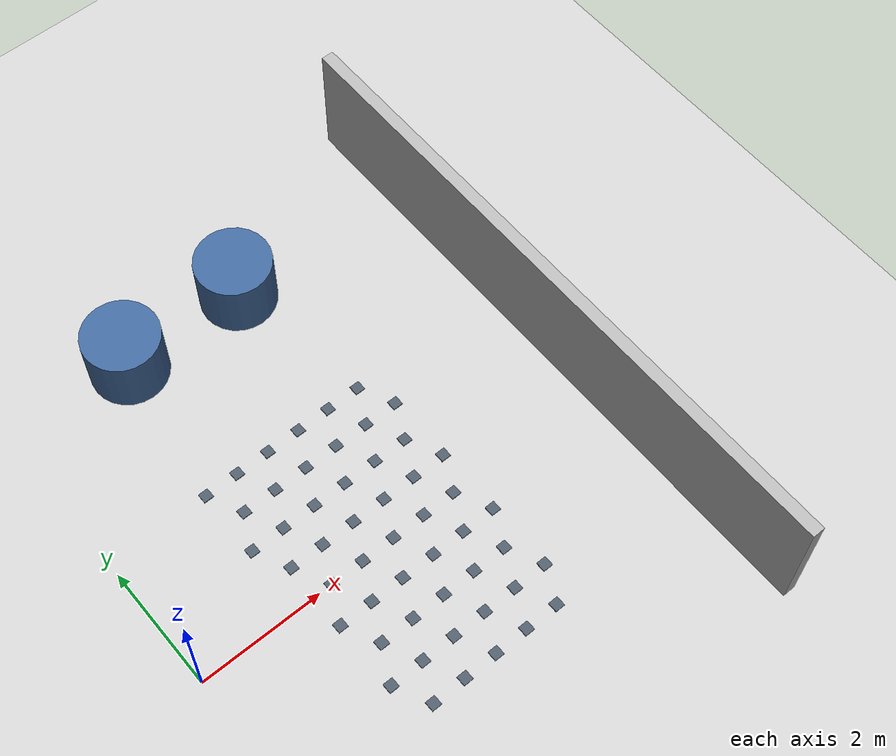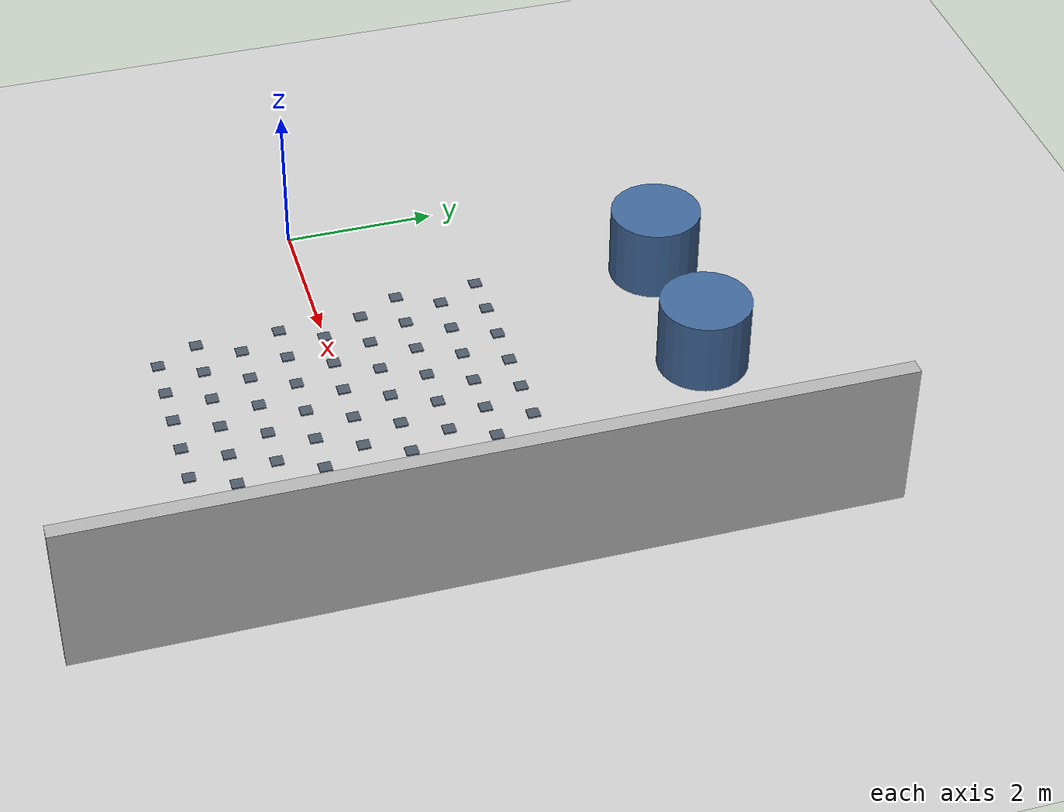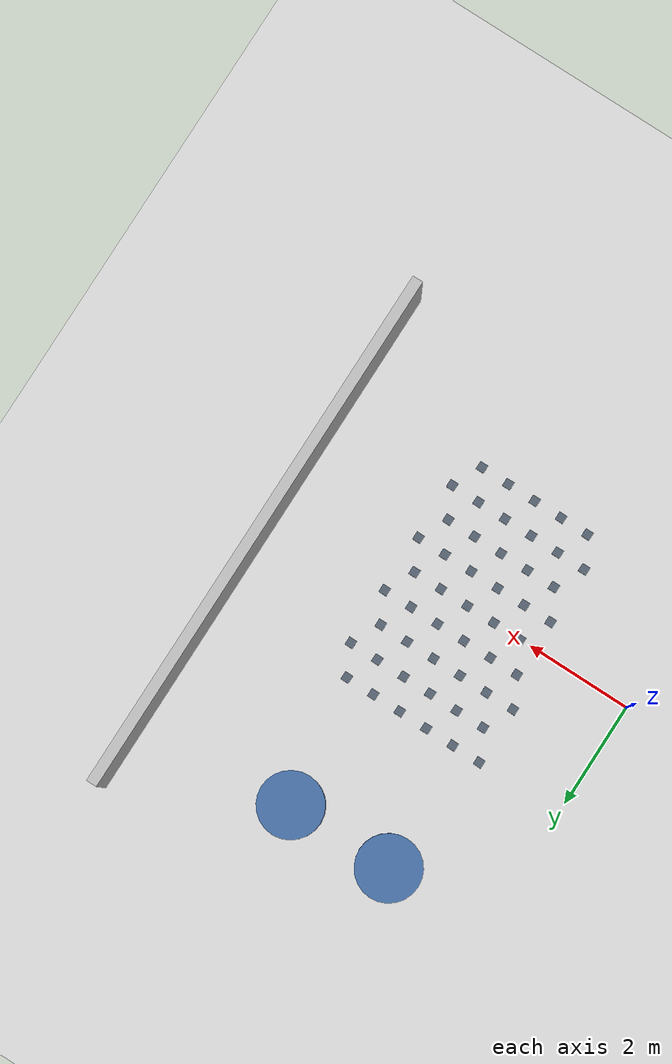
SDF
<sdf version="1.9">
 <world name="empty_ground">
  <model name="ground_plane">
   <static>true</static>
   <link name="link">
    <collision name="collision">
     <geometry><plane><normal>0 0 1</normal><size>100 100</size></plane></geometry>
     <surface>
      <friction>
       <ode><mu>1.5</mu><mu2>1.5</mu2></ode>
       <torsional><coefficient>0.0</coefficient></torsional>
      </friction>
     </surface>
    </collision>
    <visual name="visual">
     <geometry><plane><normal>0 0 1</normal><size>100 100</size></plane></geometry>
     <material><ambient>0.8 0.8 0.8 1</ambient><diffuse>0.8 0.8 0.8 1</diffuse></material>
    </visual>
   </link>
  </model>
  <model name="bump_49">
   <static>true</static>
   <pose>1.920 -1.650 0.012 0 0 0</pose>
   <link name="link">
    <collision name="collision">
     <geometry><box><size>0.16 0.16 0.024</size></box></geometry>
     <surface>
      <friction>
       <ode><mu>1.5</mu><mu2>1.5</mu2></ode>
       <torsional><coefficient>0.0</coefficient></torsional>
      </friction>
     </surface>
    </collision>
    <visual name="visual">
     <geometry><box><size>0.16 0.16 0.024</size></box></geometry>
     <material><ambient>0.25 0.3 0.35 1</ambient><diffuse>0.30 0.35 0.4 1</diffuse></material>
    </visual>
   </link>
  </model>
  <model name="bump_51">
   <static>true</static>
   <pose>1.920 -0.550 0.012 0 0 0</pose>
   <link name="link">
    <collision name="collision">
     <geometry><box><size>0.16 0.16 0.024</size></box></geometry>
     <surface>
      <friction>
       <ode><mu>1.5</mu><mu2>1.5</mu2></ode>
       <torsional><coefficient>0.0</coefficient></torsional>
      </friction>
     </surface>
    </collision>
    <visual name="visual">
     <geometry><box><size>0.16 0.16 0.024</size></box></geometry>
     <material><ambient>0.25 0.3 0.35 1</ambient><diffuse>0.30 0.35 0.4 1</diffuse></material>
    </visual>
   </link>
  </model>
  <model name="bump_53">
   <static>true</static>
   <pose>1.920 0.550 0.012 0 0 0</pose>
   <link name="link">
    <collision name="collision">
     <geometry><box><size>0.16 0.16 0.024</size></box></geometry>
     <surface>
      <friction>
       <ode><mu>1.5</mu><mu2>1.5</mu2></ode>
       <torsional><coefficient>0.0</coefficient></torsional>
      </friction>
     </surface>
    </collision>
    <visual name="visual">
     <geometry><box><size>0.16 0.16 0.024</size></box></geometry>
     <material><ambient>0.25 0.3 0.35 1</ambient><diffuse>0.30 0.35 0.4 1</diffuse></material>
    </visual>
   </link>
  </model>
  <model name="bump_54">
   <static>true</static>
   <pose>1.650 1.100 0.012 0 0 0</pose>
   <link name="link">
    <collision name="collision">
     <geometry><box><size>0.16 0.16 0.024</size></box></geometry>
     <surface>
      <friction>
       <ode><mu>1.5</mu><mu2>1.5</mu2></ode>
       <torsional><coefficient>0.0</coefficient></torsional>
      </friction>
     </surface>
    </collision>
    <visual name="visual">
     <geometry><box><size>0.16 0.16 0.024</size></box></geometry>
     <material><ambient>0.25 0.3 0.35 1</ambient><diffuse>0.30 0.35 0.4 1</diffuse></material>
    </visual>
   </link>
  </model>
  <model name="bump_55">
   <static>true</static>
   <pose>1.920 1.650 0.012 0 0 0</pose>
   <link name="link">
    <collision name="collision">
     <geometry><box><size>0.16 0.16 0.024</size></box></geometry>
     <surface>
      <friction>
       <ode><mu>1.5</mu><mu2>1.5</mu2></ode>
       <torsional><coefficient>0.0</coefficient></torsional>
      </friction>
     </surface>
    </collision>
    <visual name="visual">
     <geometry><box><size>0.16 0.16 0.024</size></box></geometry>
     <material><ambient>0.25 0.3 0.35 1</ambient><diffuse>0.30 0.35 0.4 1</diffuse></material>
    </visual>
   </link>
  </model>
  <model name="bump_56">
   <static>true</static>
   <pose>1.650 2.200 0.012 0 0 0</pose>
   <link name="link">
    <collision name="collision">
     <geometry><box><size>0.16 0.16 0.024</size></box></geometry>
     <surface>
      <friction>
       <ode><mu>1.5</mu><mu2>1.5</mu2></ode>
       <torsional><coefficient>0.0</coefficient></torsional>
      </friction>
     </surface>
    </collision>
    <visual name="visual">
     <geometry><box><size>0.16 0.16 0.024</size></box></geometry>
     <material><ambient>0.25 0.3 0.35 1</ambient><diffuse>0.30 0.35 0.4 1</diffuse></material>
    </visual>
   </link>
  </model>
  <model name="bump_57">
   <static>true</static>
   <pose>2.200 -2.200 0.012 0 0 0</pose>
   <link name="link">
    <collision name="collision">
     <geometry><box><size>0.16 0.16 0.024</size></box></geometry>
     <surface>
      <friction>
       <ode><mu>1.5</mu><mu2>1.5</mu2></ode>
       <torsional><coefficient>0.0</coefficient></torsional>
      </friction>
     </surface>
    </collision>
    <visual name="visual">
     <geometry><box><size>0.16 0.16 0.024</size></box></geometry>
     <material><ambient>0.25 0.3 0.35 1</ambient><diffuse>0.30 0.35 0.4 1</diffuse></material>
    </visual>
   </link>
  </model>
  <model name="bump_58">
   <static>true</static>
   <pose>2.470 -1.650 0.012 0 0 0</pose>
   <link name="link">
    <collision name="collision">
     <geometry><box><size>0.16 0.16 0.024</size></box></geometry>
     <surface>
      <friction>
       <ode><mu>1.5</mu><mu2>1.5</mu2></ode>
       <torsional><coefficient>0.0</coefficient></torsional>
      </friction>
     </surface>
    </collision>
    <visual name="visual">
     <geometry><box><size>0.16 0.16 0.024</size></box></geometry>
     <material><ambient>0.25 0.3 0.35 1</ambient><diffuse>0.30 0.35 0.4 1</diffuse></material>
    </visual>
   </link>
  </model>
  <model name="bump_59">
   <static>true</static>
   <pose>2.200 -1.100 0.012 0 0 0</pose>
   <link name="link">
    <collision name="collision">
     <geometry><box><size>0.16 0.16 0.024</size></box></geometry>
     <surface>
      <friction>
       <ode><mu>1.5</mu><mu2>1.5</mu2></ode>
       <torsional><coefficient>0.0</coefficient></torsional>
      </friction>
     </surface>
    </collision>
    <visual name="visual">
     <geometry><box><size>0.16 0.16 0.024</size></box></geometry>
     <material><ambient>0.25 0.3 0.35 1</ambient><diffuse>0.30 0.35 0.4 1</diffuse></material>
    </visual>
   </link>
  </model>
  <model name="bump_60">
   <static>true</static>
   <pose>2.470 -0.550 0.012 0 0 0</pose>
   <link name="link">
    <collision name="collision">
     <geometry><box><size>0.16 0.16 0.024</size></box></geometry>
     <surface>
      <friction>
       <ode><mu>1.5</mu><mu2>1.5</mu2></ode>
       <torsional><coefficient>0.0</coefficient></torsional>
      </friction>
     </surface>
    </collision>
    <visual name="visual">
     <geometry><box><size>0.16 0.16 0.024</size></box></geometry>
     <material><ambient>0.25 0.3 0.35 1</ambient><diffuse>0.30 0.35 0.4 1</diffuse></material>
    </visual>
   </link>
  </model>
  <model name="bump_61">
   <static>true</static>
   <pose>2.200 0.000 0.012 0 0 0</pose>
   <link name="link">
    <collision name="collision">
     <geometry><box><size>0.16 0.16 0.024</size></box></geometry>
     <surface>
      <friction>
       <ode><mu>1.5</mu><mu2>1.5</mu2></ode>
       <torsional><coefficient>0.0</coefficient></torsional>
      </friction>
     </surface>
    </collision>
    <visual name="visual">
     <geometry><box><size>0.16 0.16 0.024</size></box></geometry>
     <material><ambient>0.25 0.3 0.35 1</ambient><diffuse>0.30 0.35 0.4 1</diffuse></material>
    </visual>
   </link>
  </model>
  <model name="bump_62">
   <static>true</static>
   <pose>2.470 0.550 0.012 0 0 0</pose>
   <link name="link">
    <collision name="collision">
     <geometry><box><size>0.16 0.16 0.024</size></box></geometry>
     <surface>
      <friction>
       <ode><mu>1.5</mu><mu2>1.5</mu2></ode>
       <torsional><coefficient>0.0</coefficient></torsional>
      </friction>
     </surface>
    </collision>
    <visual name="visual">
     <geometry><box><size>0.16 0.16 0.024</size></box></geometry>
     <material><ambient>0.25 0.3 0.35 1</ambient><diffuse>0.30 0.35 0.4 1</diffuse></material>
    </visual>
   </link>
  </model>
  <model name="bump_63">
   <static>true</static>
   <pose>2.200 1.100 0.012 0 0 0</pose>
   <link name="link">
    <collision name="collision">
     <geometry><box><size>0.16 0.16 0.024</size></box></geometry>
     <surface>
      <friction>
       <ode><mu>1.5</mu><mu2>1.5</mu2></ode>
       <torsional><coefficient>0.0</coefficient></torsional>
      </friction>
     </surface>
    </collision>
    <visual name="visual">
     <geometry><box><size>0.16 0.16 0.024</size></box></geometry>
     <material><ambient>0.25 0.3 0.35 1</ambient><diffuse>0.30 0.35 0.4 1</diffuse></material>
    </visual>
   </link>
  </model>
  <model name="bump_64">
   <static>true</static>
   <pose>2.470 1.650 0.012 0 0 0</pose>
   <link name="link">
    <collision name="collision">
     <geometry><box><size>0.16 0.16 0.024</size></box></geometry>
     <surface>
      <friction>
       <ode><mu>1.5</mu><mu2>1.5</mu2></ode>
       <torsional><coefficient>0.0</coefficient></torsional>
      </friction>
     </surface>
    </collision>
    <visual name="visual">
     <geometry><box><size>0.16 0.16 0.024</size></box></geometry>
     <material><ambient>0.25 0.3 0.35 1</ambient><diffuse>0.30 0.35 0.4 1</diffuse></material>
    </visual>
   </link>
  </model>
  <model name="bump_65">
   <static>true</static>
   <pose>2.200 2.200 0.012 0 0 0</pose>
   <link name="link">
    <collision name="collision">
     <geometry><box><size>0.16 0.16 0.024</size></box></geometry>
     <surface>
      <friction>
       <ode><mu>1.5</mu><mu2>1.5</mu2></ode>
       <torsional><coefficient>0.0</coefficient></torsional>
      </friction>
     </surface>
    </collision>
    <visual name="visual">
     <geometry><box><size>0.16 0.16 0.024</size></box></geometry>
     <material><ambient>0.25 0.3 0.35 1</ambient><diffuse>0.30 0.35 0.4 1</diffuse></material>
    </visual>
   </link>
  </model>
  <model name="bump_66">
   <static>true</static>
   <pose>2.750 -2.200 0.012 0 0 0</pose>
   <link name="link">
    <collision name="collision">
     <geometry><box><size>0.16 0.16 0.024</size></box></geometry>
     <surface>
      <friction>
       <ode><mu>1.5</mu><mu2>1.5</mu2></ode>
       <torsional><coefficient>0.0</coefficient></torsional>
      </friction>
     </surface>
    </collision>
    <visual name="visual">
     <geometry><box><size>0.16 0.16 0.024</size></box></geometry>
     <material><ambient>0.25 0.3 0.35 1</ambient><diffuse>0.30 0.35 0.4 1</diffuse></material>
    </visual>
   </link>
  </model>
  <model name="bump_67">
   <static>true</static>
   <pose>3.020 -1.650 0.012 0 0 0</pose>
   <link name="link">
    <collision name="collision">
     <geometry><box><size>0.16 0.16 0.024</size></box></geometry>
     <surface>
      <friction>
       <ode><mu>1.5</mu><mu2>1.5</mu2></ode>
       <torsional><coefficient>0.0</coefficient></torsional>
      </friction>
     </surface>
    </collision>
    <visual name="visual">
     <geometry><box><size>0.16 0.16 0.024</size></box></geometry>
     <material><ambient>0.25 0.3 0.35 1</ambient><diffuse>0.30 0.35 0.4 1</diffuse></material>
    </visual>
   </link>
  </model>
  <model name="bump_68">
   <static>true</static>
   <pose>2.750 -1.100 0.012 0 0 0</pose>
   <link name="link">
    <collision name="collision">
     <geometry><box><size>0.16 0.16 0.024</size></box></geometry>
     <surface>
      <friction>
       <ode><mu>1.5</mu><mu2>1.5</mu2></ode>
       <torsional><coefficient>0.0</coefficient></torsional>
      </friction>
     </surface>
    </collision>
    <visual name="visual">
     <geometry><box><size>0.16 0.16 0.024</size></box></geometry>
     <material><ambient>0.25 0.3 0.35 1</ambient><diffuse>0.30 0.35 0.4 1</diffuse></material>
    </visual>
   </link>
  </model>
  <model name="bump_69">
   <static>true</static>
   <pose>3.020 -0.550 0.012 0 0 0</pose>
   <link name="link">
    <collision name="collision">
     <geometry><box><size>0.16 0.16 0.024</size></box></geometry>
     <surface>
      <friction>
       <ode><mu>1.5</mu><mu2>1.5</mu2></ode>
       <torsional><coefficient>0.0</coefficient></torsional>
      </friction>
     </surface>
    </collision>
    <visual name="visual">
     <geometry><box><size>0.16 0.16 0.024</size></box></geometry>
     <material><ambient>0.25 0.3 0.35 1</ambient><diffuse>0.30 0.35 0.4 1</diffuse></material>
    </visual>
   </link>
  </model>
  <model name="bump_70">
   <static>true</static>
   <pose>2.750 0.000 0.012 0 0 0</pose>
   <link name="link">
    <collision name="collision">
     <geometry><box><size>0.16 0.16 0.024</size></box></geometry>
     <surface>
      <friction>
       <ode><mu>1.5</mu><mu2>1.5</mu2></ode>
       <torsional><coefficient>0.0</coefficient></torsional>
      </friction>
     </surface>
    </collision>
    <visual name="visual">
     <geometry><box><size>0.16 0.16 0.024</size></box></geometry>
     <material><ambient>0.25 0.3 0.35 1</ambient><diffuse>0.30 0.35 0.4 1</diffuse></material>
    </visual>
   </link>
  </model>
  <model name="bump_71">
   <static>true</static>
   <pose>3.020 0.550 0.012 0 0 0</pose>
   <link name="link">
    <collision name="collision">
     <geometry><box><size>0.16 0.16 0.024</size></box></geometry>
     <surface>
      <friction>
       <ode><mu>1.5</mu><mu2>1.5</mu2></ode>
       <torsional><coefficient>0.0</coefficient></torsional>
      </friction>
     </surface>
    </collision>
    <visual name="visual">
     <geometry><box><size>0.16 0.16 0.024</size></box></geometry>
     <material><ambient>0.25 0.3 0.35 1</ambient><diffuse>0.30 0.35 0.4 1</diffuse></material>
    </visual>
   </link>
  </model>
  <model name="bump_72">
   <static>true</static>
   <pose>2.750 1.100 0.012 0 0 0</pose>
   <link name="link">
    <collision name="collision">
     <geometry><box><size>0.16 0.16 0.024</size></box></geometry>
     <surface>
      <friction>
       <ode><mu>1.5</mu><mu2>1.5</mu2></ode>
       <torsional><coefficient>0.0</coefficient></torsional>
      </friction>
     </surface>
    </collision>
    <visual name="visual">
     <geometry><box><size>0.16 0.16 0.024</size></box></geometry>
     <material><ambient>0.25 0.3 0.35 1</ambient><diffuse>0.30 0.35 0.4 1</diffuse></material>
    </visual>
   </link>
  </model>
  <model name="bump_73">
   <static>true</static>
   <pose>3.020 1.650 0.012 0 0 0</pose>
   <link name="link">
    <collision name="collision">
     <geometry><box><size>0.16 0.16 0.024</size></box></geometry>
     <surface>
      <friction>
       <ode><mu>1.5</mu><mu2>1.5</mu2></ode>
       <torsional><coefficient>0.0</coefficient></torsional>
      </friction>
     </surface>
    </collision>
    <visual name="visual">
     <geometry><box><size>0.16 0.16 0.024</size></box></geometry>
     <material><ambient>0.25 0.3 0.35 1</ambient><diffuse>0.30 0.35 0.4 1</diffuse></material>
    </visual>
   </link>
  </model>
  <model name="bump_74">
   <static>true</static>
   <pose>2.750 2.200 0.012 0 0 0</pose>
   <link name="link">
    <collision name="collision">
     <geometry><box><size>0.16 0.16 0.024</size></box></geometry>
     <surface>
      <friction>
       <ode><mu>1.5</mu><mu2>1.5</mu2></ode>
       <torsional><coefficient>0.0</coefficient></torsional>
      </friction>
     </surface>
    </collision>
    <visual name="visual">
     <geometry><box><size>0.16 0.16 0.024</size></box></geometry>
     <material><ambient>0.25 0.3 0.35 1</ambient><diffuse>0.30 0.35 0.4 1</diffuse></material>
    </visual>
   </link>
  </model>
  <model name="bump_75">
   <static>true</static>
   <pose>3.300 -2.200 0.012 0 0 0</pose>
   <link name="link">
    <collision name="collision">
     <geometry><box><size>0.16 0.16 0.024</size></box></geometry>
     <surface>
      <friction>
       <ode><mu>1.5</mu><mu2>1.5</mu2></ode>
       <torsional><coefficient>0.0</coefficient></torsional>
      </friction>
     </surface>
    </collision>
    <visual name="visual">
     <geometry><box><size>0.16 0.16 0.024</size></box></geometry>
     <material><ambient>0.25 0.3 0.35 1</ambient><diffuse>0.30 0.35 0.4 1</diffuse></material>
    </visual>
   </link>
  </model>
  <model name="bump_76">
   <static>true</static>
   <pose>3.570 -1.650 0.012 0 0 0</pose>
   <link name="link">
    <collision name="collision">
     <geometry><box><size>0.16 0.16 0.024</size></box></geometry>
     <surface>
      <friction>
       <ode><mu>1.5</mu><mu2>1.5</mu2></ode>
       <torsional><coefficient>0.0</coefficient></torsional>
      </friction>
     </surface>
    </collision>
    <visual name="visual">
     <geometry><box><size>0.16 0.16 0.024</size></box></geometry>
     <material><ambient>0.25 0.3 0.35 1</ambient><diffuse>0.30 0.35 0.4 1</diffuse></material>
    </visual>
   </link>
  </model>
  <model name="bump_77">
   <static>true</static>
   <pose>3.300 -1.100 0.012 0 0 0</pose>
   <link name="link">
    <collision name="collision">
     <geometry><box><size>0.16 0.16 0.024</size></box></geometry>
     <surface>
      <friction>
       <ode><mu>1.5</mu><mu2>1.5</mu2></ode>
       <torsional><coefficient>0.0</coefficient></torsional>
      </friction>
     </surface>
    </collision>
    <visual name="visual">
     <geometry><box><size>0.16 0.16 0.024</size></box></geometry>
     <material><ambient>0.25 0.3 0.35 1</ambient><diffuse>0.30 0.35 0.4 1</diffuse></material>
    </visual>
   </link>
  </model>
  <model name="bump_78">
   <static>true</static>
   <pose>3.570 -0.550 0.012 0 0 0</pose>
   <link name="link">
    <collision name="collision">
     <geometry><box><size>0.16 0.16 0.024</size></box></geometry>
     <surface>
      <friction>
       <ode><mu>1.5</mu><mu2>1.5</mu2></ode>
       <torsional><coefficient>0.0</coefficient></torsional>
      </friction>
     </surface>
    </collision>
    <visual name="visual">
     <geometry><box><size>0.16 0.16 0.024</size></box></geometry>
     <material><ambient>0.25 0.3 0.35 1</ambient><diffuse>0.30 0.35 0.4 1</diffuse></material>
    </visual>
   </link>
  </model>
  <model name="bump_79">
   <static>true</static>
   <pose>3.300 0.000 0.012 0 0 0</pose>
   <link name="link">
    <collision name="collision">
     <geometry><box><size>0.16 0.16 0.024</size></box></geometry>
     <surface>
      <friction>
       <ode><mu>1.5</mu><mu2>1.5</mu2></ode>
       <torsional><coefficient>0.0</coefficient></torsional>
      </friction>
     </surface>
    </collision>
    <visual name="visual">
     <geometry><box><size>0.16 0.16 0.024</size></box></geometry>
     <material><ambient>0.25 0.3 0.35 1</ambient><diffuse>0.30 0.35 0.4 1</diffuse></material>
    </visual>
   </link>
  </model>
  <model name="bump_80">
   <static>true</static>
   <pose>3.570 0.550 0.012 0 0 0</pose>
   <link name="link">
    <collision name="collision">
     <geometry><box><size>0.16 0.16 0.024</size></box></geometry>
     <surface>
      <friction>
       <ode><mu>1.5</mu><mu2>1.5</mu2></ode>
       <torsional><coefficient>0.0</coefficient></torsional>
      </friction>
     </surface>
    </collision>
    <visual name="visual">
     <geometry><box><size>0.16 0.16 0.024</size></box></geometry>
     <material><ambient>0.25 0.3 0.35 1</ambient><diffuse>0.30 0.35 0.4 1</diffuse></material>
    </visual>
   </link>
  </model>
  <model name="bump_81">
   <static>true</static>
   <pose>3.300 1.100 0.012 0 0 0</pose>
   <link name="link">
    <collision name="collision">
     <geometry><box><size>0.16 0.16 0.024</size></box></geometry>
     <surface>
      <friction>
       <ode><mu>1.5</mu><mu2>1.5</mu2></ode>
       <torsional><coefficient>0.0</coefficient></torsional>
      </friction>
     </surface>
    </collision>
    <visual name="visual">
     <geometry><box><size>0.16 0.16 0.024</size></box></geometry>
     <material><ambient>0.25 0.3 0.35 1</ambient><diffuse>0.30 0.35 0.4 1</diffuse></material>
    </visual>
   </link>
  </model>
  <model name="bump_82">
   <static>true</static>
   <pose>3.570 1.650 0.012 0 0 0</pose>
   <link name="link">
    <collision name="collision">
     <geometry><box><size>0.16 0.16 0.024</size></box></geometry>
     <surface>
      <friction>
       <ode><mu>1.5</mu><mu2>1.5</mu2></ode>
       <torsional><coefficient>0.0</coefficient></torsional>
      </friction>
     </surface>
    </collision>
    <visual name="visual">
     <geometry><box><size>0.16 0.16 0.024</size></box></geometry>
     <material><ambient>0.25 0.3 0.35 1</ambient><diffuse>0.30 0.35 0.4 1</diffuse></material>
    </visual>
   </link>
  </model>
  <model name="bump_83">
   <static>true</static>
   <pose>3.300 2.200 0.012 0 0 0</pose>
   <link name="link">
    <collision name="collision">
     <geometry><box><size>0.16 0.16 0.024</size></box></geometry>
     <surface>
      <friction>
       <ode><mu>1.5</mu><mu2>1.5</mu2></ode>
       <torsional><coefficient>0.0</coefficient></torsional>
      </friction>
     </surface>
    </collision>
    <visual name="visual">
     <geometry><box><size>0.16 0.16 0.024</size></box></geometry>
     <material><ambient>0.25 0.3 0.35 1</ambient><diffuse>0.30 0.35 0.4 1</diffuse></material>
    </visual>
   </link>
  </model>
  <model name="bump_84">
   <static>true</static>
   <pose>3.850 -2.200 0.012 0 0 0</pose>
   <link name="link">
    <collision name="collision">
     <geometry><box><size>0.16 0.16 0.024</size></box></geometry>
     <surface>
      <friction>
       <ode><mu>1.5</mu><mu2>1.5</mu2></ode>
       <torsional><coefficient>0.0</coefficient></torsional>
      </friction>
     </surface>
    </collision>
    <visual name="visual">
     <geometry><box><size>0.16 0.16 0.024</size></box></geometry>
     <material><ambient>0.25 0.3 0.35 1</ambient><diffuse>0.30 0.35 0.4 1</diffuse></material>
    </visual>
   </link>
  </model>
  <model name="bump_85">
   <static>true</static>
   <pose>4.120 -1.650 0.012 0 0 0</pose>
   <link name="link">
    <collision name="collision">
     <geometry><box><size>0.16 0.16 0.024</size></box></geometry>
     <surface>
      <friction>
       <ode><mu>1.5</mu><mu2>1.5</mu2></ode>
       <torsional><coefficient>0.0</coefficient></torsional>
      </friction>
     </surface>
    </collision>
    <visual name="visual">
     <geometry><box><size>0.16 0.16 0.024</size></box></geometry>
     <material><ambient>0.25 0.3 0.35 1</ambient><diffuse>0.30 0.35 0.4 1</diffuse></material>
    </visual>
   </link>
  </model>
  <model name="bump_86">
   <static>true</static>
   <pose>3.850 -1.100 0.012 0 0 0</pose>
   <link name="link">
    <collision name="collision">
     <geometry><box><size>0.16 0.16 0.024</size></box></geometry>
     <surface>
      <friction>
       <ode><mu>1.5</mu><mu2>1.5</mu2></ode>
       <torsional><coefficient>0.0</coefficient></torsional>
      </friction>
     </surface>
    </collision>
    <visual name="visual">
     <geometry><box><size>0.16 0.16 0.024</size></box></geometry>
     <material><ambient>0.25 0.3 0.35 1</ambient><diffuse>0.30 0.35 0.4 1</diffuse></material>
    </visual>
   </link>
  </model>
  <model name="bump_87">
   <static>true</static>
   <pose>4.120 -0.550 0.012 0 0 0</pose>
   <link name="link">
    <collision name="collision">
     <geometry><box><size>0.16 0.16 0.024</size></box></geometry>
     <surface>
      <friction>
       <ode><mu>1.5</mu><mu2>1.5</mu2></ode>
       <torsional><coefficient>0.0</coefficient></torsional>
      </friction>
     </surface>
    </collision>
    <visual name="visual">
     <geometry><box><size>0.16 0.16 0.024</size></box></geometry>
     <material><ambient>0.25 0.3 0.35 1</ambient><diffuse>0.30 0.35 0.4 1</diffuse></material>
    </visual>
   </link>
  </model>
  <model name="bump_88">
   <static>true</static>
   <pose>3.850 0.000 0.012 0 0 0</pose>
   <link name="link">
    <collision name="collision">
     <geometry><box><size>0.16 0.16 0.024</size></box></geometry>
     <surface>
      <friction>
       <ode><mu>1.5</mu><mu2>1.5</mu2></ode>
       <torsional><coefficient>0.0</coefficient></torsional>
      </friction>
     </surface>
    </collision>
    <visual name="visual">
     <geometry><box><size>0.16 0.16 0.024</size></box></geometry>
     <material><ambient>0.25 0.3 0.35 1</ambient><diffuse>0.30 0.35 0.4 1</diffuse></material>
    </visual>
   </link>
  </model>
  <model name="bump_89">
   <static>true</static>
   <pose>4.120 0.550 0.012 0 0 0</pose>
   <link name="link">
    <collision name="collision">
     <geometry><box><size>0.16 0.16 0.024</size></box></geometry>
     <surface>
      <friction>
       <ode><mu>1.5</mu><mu2>1.5</mu2></ode>
       <torsional><coefficient>0.0</coefficient></torsional>
      </friction>
     </surface>
    </collision>
    <visual name="visual">
     <geometry><box><size>0.16 0.16 0.024</size></box></geometry>
     <material><ambient>0.25 0.3 0.35 1</ambient><diffuse>0.30 0.35 0.4 1</diffuse></material>
    </visual>
   </link>
  </model>
  <model name="bump_90">
   <static>true</static>
   <pose>3.850 1.100 0.012 0 0 0</pose>
   <link name="link">
    <collision name="collision">
     <geometry><box><size>0.16 0.16 0.024</size></box></geometry>
     <surface>
      <friction>
       <ode><mu>1.5</mu><mu2>1.5</mu2></ode>
       <torsional><coefficient>0.0</coefficient></torsional>
      </friction>
     </surface>
    </collision>
    <visual name="visual">
     <geometry><box><size>0.16 0.16 0.024</size></box></geometry>
     <material><ambient>0.25 0.3 0.35 1</ambient><diffuse>0.30 0.35 0.4 1</diffuse></material>
    </visual>
   </link>
  </model>
  <model name="bump_91">
   <static>true</static>
   <pose>4.120 1.650 0.012 0 0 0</pose>
   <link name="link">
    <collision name="collision">
     <geometry><box><size>0.16 0.16 0.024</size></box></geometry>
     <surface>
      <friction>
       <ode><mu>1.5</mu><mu2>1.5</mu2></ode>
       <torsional><coefficient>0.0</coefficient></torsional>
      </friction>
     </surface>
    </collision>
    <visual name="visual">
     <geometry><box><size>0.16 0.16 0.024</size></box></geometry>
     <material><ambient>0.25 0.3 0.35 1</ambient><diffuse>0.30 0.35 0.4 1</diffuse></material>
    </visual>
   </link>
  </model>
  <model name="bump_92">
   <static>true</static>
   <pose>3.850 2.200 0.012 0 0 0</pose>
   <link name="link">
    <collision name="collision">
     <geometry><box><size>0.16 0.16 0.024</size></box></geometry>
     <surface>
      <friction>
       <ode><mu>1.5</mu><mu2>1.5</mu2></ode>
       <torsional><coefficient>0.0</coefficient></torsional>
      </friction>
     </surface>
    </collision>
    <visual name="visual">
     <geometry><box><size>0.16 0.16 0.024</size></box></geometry>
     <material><ambient>0.25 0.3 0.35 1</ambient><diffuse>0.30 0.35 0.4 1</diffuse></material>
    </visual>
   </link>
  </model>
  <model name="bump_93">
   <static>true</static>
   <pose>4.400 -2.200 0.012 0 0 0</pose>
   <link name="link">
    <collision name="collision">
     <geometry><box><size>0.16 0.16 0.024</size></box></geometry>
     <surface>
      <friction>
       <ode><mu>1.5</mu><mu2>1.5</mu2></ode>
       <torsional><coefficient>0.0</coefficient></torsional>
      </friction>
     </surface>
    </collision>
    <visual name="visual">
     <geometry><box><size>0.16 0.16 0.024</size></box></geometry>
     <material><ambient>0.25 0.3 0.35 1</ambient><diffuse>0.30 0.35 0.4 1</diffuse></material>
    </visual>
   </link>
  </model>
  <model name="bump_94">
   <static>true</static>
   <pose>4.670 -1.650 0.012 0 0 0</pose>
   <link name="link">
    <collision name="collision">
     <geometry><box><size>0.16 0.16 0.024</size></box></geometry>
     <surface>
      <friction>
       <ode><mu>1.5</mu><mu2>1.5</mu2></ode>
       <torsional><coefficient>0.0</coefficient></torsional>
      </friction>
     </surface>
    </collision>
    <visual name="visual">
     <geometry><box><size>0.16 0.16 0.024</size></box></geometry>
     <material><ambient>0.25 0.3 0.35 1</ambient><diffuse>0.30 0.35 0.4 1</diffuse></material>
    </visual>
   </link>
  </model>
  <model name="bump_95">
   <static>true</static>
   <pose>4.400 -1.100 0.012 0 0 0</pose>
   <link name="link">
    <collision name="collision">
     <geometry><box><size>0.16 0.16 0.024</size></box></geometry>
     <surface>
      <friction>
       <ode><mu>1.5</mu><mu2>1.5</mu2></ode>
       <torsional><coefficient>0.0</coefficient></torsional>
      </friction>
     </surface>
    </collision>
    <visual name="visual">
     <geometry><box><size>0.16 0.16 0.024</size></box></geometry>
     <material><ambient>0.25 0.3 0.35 1</ambient><diffuse>0.30 0.35 0.4 1</diffuse></material>
    </visual>
   </link>
  </model>
  <model name="bump_96">
   <static>true</static>
   <pose>4.670 -0.550 0.012 0 0 0</pose>
   <link name="link">
    <collision name="collision">
     <geometry><box><size>0.16 0.16 0.024</size></box></geometry>
     <surface>
      <friction>
       <ode><mu>1.5</mu><mu2>1.5</mu2></ode>
       <torsional><coefficient>0.0</coefficient></torsional>
      </friction>
     </surface>
    </collision>
    <visual name="visual">
     <geometry><box><size>0.16 0.16 0.024</size></box></geometry>
     <material><ambient>0.25 0.3 0.35 1</ambient><diffuse>0.30 0.35 0.4 1</diffuse></material>
    </visual>
   </link>
  </model>
  <model name="bump_97">
   <static>true</static>
   <pose>4.400 0.000 0.012 0 0 0</pose>
   <link name="link">
    <collision name="collision">
     <geometry><box><size>0.16 0.16 0.024</size></box></geometry>
     <surface>
      <friction>
       <ode><mu>1.5</mu><mu2>1.5</mu2></ode>
       <torsional><coefficient>0.0</coefficient></torsional>
      </friction>
     </surface>
    </collision>
    <visual name="visual">
     <geometry><box><size>0.16 0.16 0.024</size></box></geometry>
     <material><ambient>0.25 0.3 0.35 1</ambient><diffuse>0.30 0.35 0.4 1</diffuse></material>
    </visual>
   </link>
  </model>
  <model name="bump_98">
   <static>true</static>
   <pose>4.670 0.550 0.012 0 0 0</pose>
   <link name="link">
    <collision name="collision">
     <geometry><box><size>0.16 0.16 0.024</size></box></geometry>
     <surface>
      <friction>
       <ode><mu>1.5</mu><mu2>1.5</mu2></ode>
       <torsional><coefficient>0.0</coefficient></torsional>
      </friction>
     </surface>
    </collision>
    <visual name="visual">
     <geometry><box><size>0.16 0.16 0.024</size></box></geometry>
     <material><ambient>0.25 0.3 0.35 1</ambient><diffuse>0.30 0.35 0.4 1</diffuse></material>
    </visual>
   </link>
  </model>
  <model name="bump_99">
   <static>true</static>
   <pose>4.400 1.100 0.012 0 0 0</pose>
   <link name="link">
    <collision name="collision">
     <geometry><box><size>0.16 0.16 0.024</size></box></geometry>
     <surface>
      <friction>
       <ode><mu>1.5</mu><mu2>1.5</mu2></ode>
       <torsional><coefficient>0.0</coefficient></torsional>
      </friction>
     </surface>
    </collision>
    <visual name="visual">
     <geometry><box><size>0.16 0.16 0.024</size></box></geometry>
     <material><ambient>0.25 0.3 0.35 1</ambient><diffuse>0.30 0.35 0.4 1</diffuse></material>
    </visual>
   </link>
  </model>
  <model name="bump_100">
   <static>true</static>
   <pose>4.670 1.650 0.012 0 0 0</pose>
   <link name="link">
    <collision name="collision">
     <geometry><box><size>0.16 0.16 0.024</size></box></geometry>
     <surface>
      <friction>
       <ode><mu>1.5</mu><mu2>1.5</mu2></ode>
       <torsional><coefficient>0.0</coefficient></torsional>
      </friction>
     </surface>
    </collision>
    <visual name="visual">
     <geometry><box><size>0.16 0.16 0.024</size></box></geometry>
     <material><ambient>0.25 0.3 0.35 1</ambient><diffuse>0.30 0.35 0.4 1</diffuse></material>
    </visual>
   </link>
  </model>
  <model name="bump_101">
   <static>true</static>
   <pose>4.400 2.200 0.012 0 0 0</pose>
   <link name="link">
    <collision name="collision">
     <geometry><box><size>0.16 0.16 0.024</size></box></geometry>
     <surface>
      <friction>
       <ode><mu>1.5</mu><mu2>1.5</mu2></ode>
       <torsional><coefficient>0.0</coefficient></torsional>
      </friction>
     </surface>
    </collision>
    <visual name="visual">
     <geometry><box><size>0.16 0.16 0.024</size></box></geometry>
     <material><ambient>0.25 0.3 0.35 1</ambient><diffuse>0.30 0.35 0.4 1</diffuse></material>
    </visual>
   </link>
  </model>
  <model name="wall_east">
   <static>true</static>
   <pose>7.000 1.000 1.000 0 0 0</pose>
   <link name="link">
    <collision name="collision"><geometry><box><size>0.2 10.2 2.0</size></box></geometry></collision>
    <visual name="visual">
     <geometry><box><size>0.2 10.2 2.0</size></box></geometry>
     <material><ambient>0.6 0.6 0.6 1</ambient><diffuse>0.7 0.7 0.7 1</diffuse></material>
    </visual>
   </link>
  </model>
  <model name="pillar_3">
   <static>true</static>
   <pose>2.000 4.600 0.500 0 0 0</pose>
   <link name="link">
    <collision name="collision">
     <geometry><cylinder><radius>0.6</radius><length>1.0</length></cylinder></geometry>
    </collision>
    <visual name="visual">
     <geometry><cylinder><radius>0.6</radius><length>1.0</length></cylinder></geometry>
     <material><ambient>0.2 0.35 0.5 1</ambient><diffuse>0.25 0.4 0.6 1</diffuse></material>
    </visual>
   </link>
  </model>
  <model name="pillar_4">
   <static>true</static>
   <pose>4.000 4.600 0.500 0 0 0</pose>
   <link name="link">
    <collision name="collision">
     <geometry><cylinder><radius>0.6</radius><length>1.0</length></cylinder></geometry>
    </collision>
    <visual name="visual">
     <geometry><cylinder><radius>0.6</radius><length>1.0</length></cylinder></geometry>
     <material><ambient>0.2 0.35 0.5 1</ambient><diffuse>0.25 0.4 0.6 1</diffuse></material>
    </visual>
   </link>
  </model>
 </world>
</sdf>
